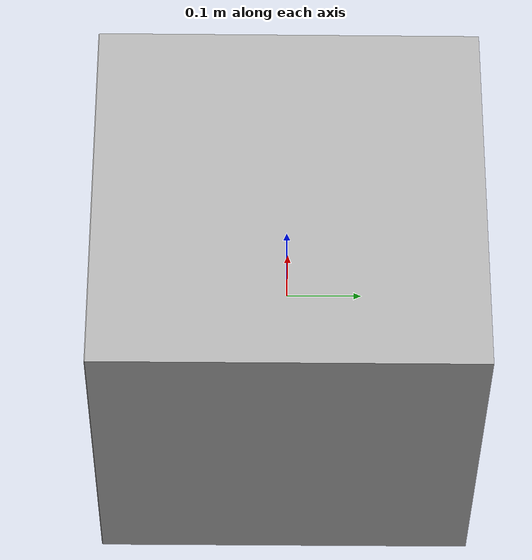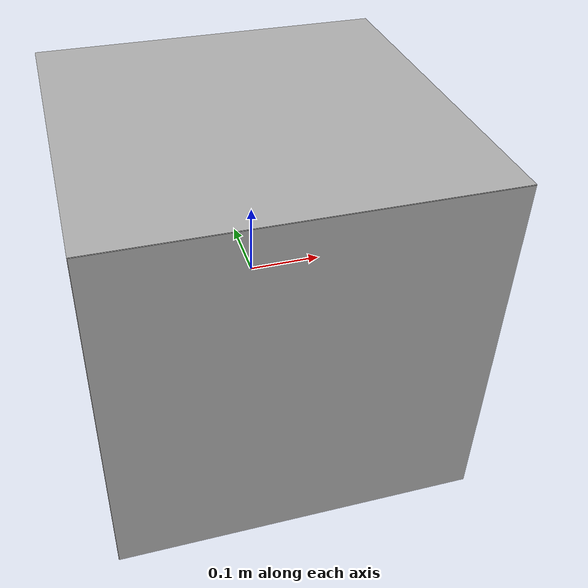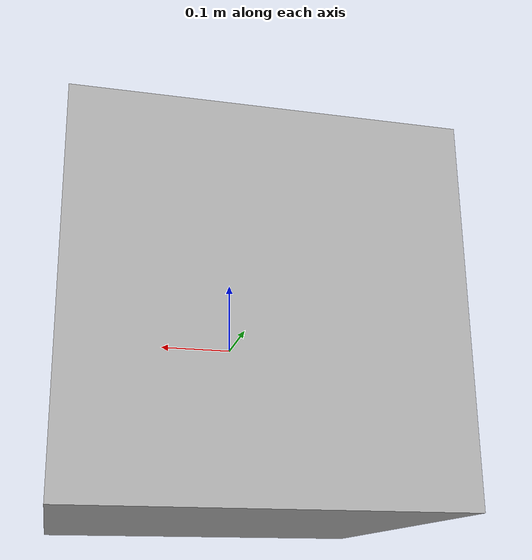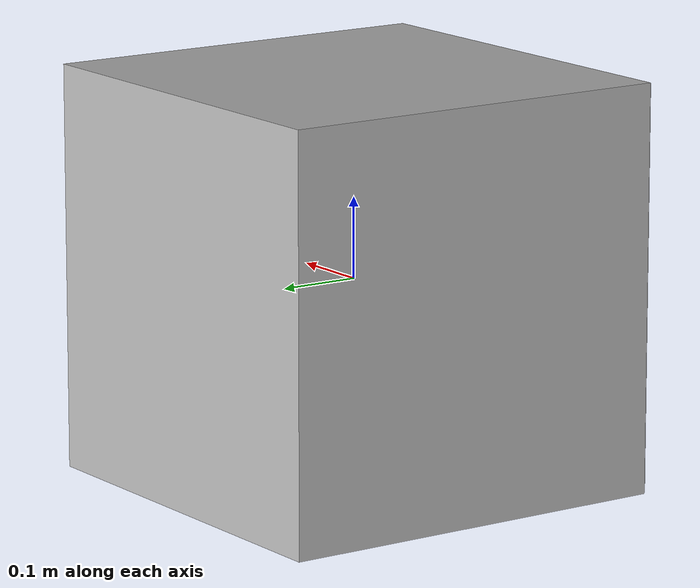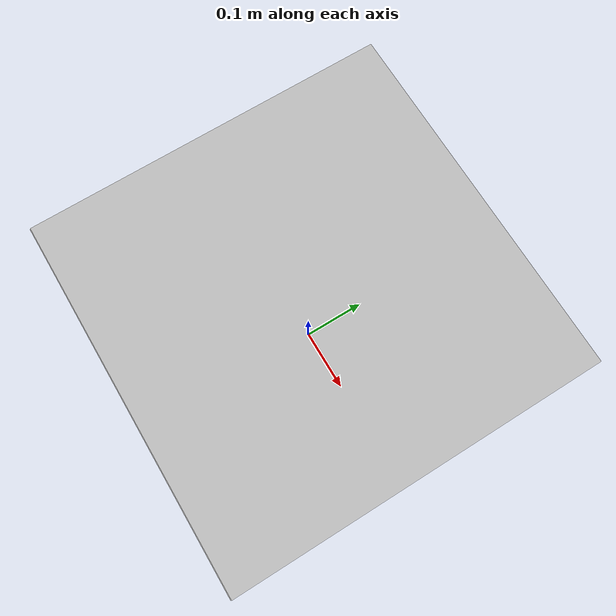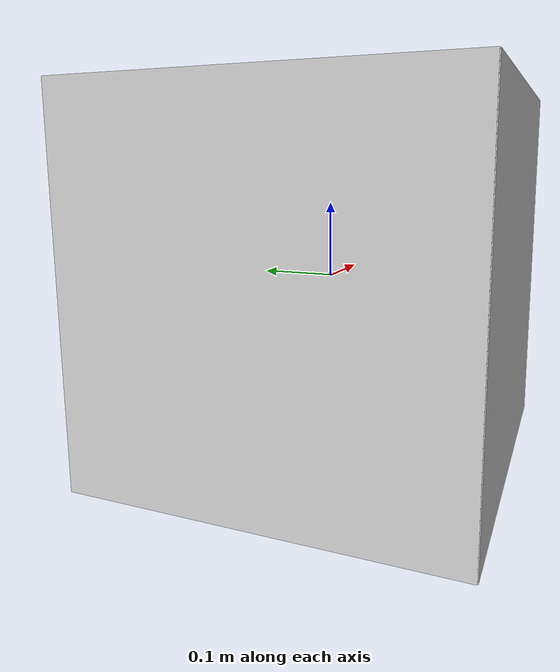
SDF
<?xml version="1.0"?>
<sdf version="1.5">
  <model name="aruco_visual_marker_26">
    <pose>0 0 0 0 0 0</pose>
    <static>false</static>

    <link name="aruco_link_base">

      <visual name="visual">
        <geometry>
          <box>
            <size>0.5 0.5 0.5</size>
          </box>
        </geometry>
      </visual>

      <collision name="collision">
        <geometry>
          <box>
            <size>0.5 0.5 0.5</size>
          </box>
        </geometry>
      </collision>

    </link>

    <link name="marker_box">
      <pose>0 -0.151 0 0 0 0</pose>
      <visual name="visual">
        <geometry>
          <box>
            <size>0.499 0.2 0.499</size>
          </box>
        </geometry>
        <material>
          <script>
            <uri>model://aruco_visual_marker_26/materials/scripts</uri>
            <uri>model://aruco_visual_marker_26/materials/textures</uri>
            <name>ArucoVisualMarker26/Marker</name>
          </script>
          <emissive>1 1 1 1</emissive>
        </material>
      </visual>

      <collision name="collision">
        <geometry>
          <box>
            <size>0.499 0.2 0.499</size>
          </box>
        </geometry>
      </collision>

    </link>

    <joint name="merker_joint" type="fixed">
      <child>marker_box</child>
      <parent>aruco_link_base</parent>
    </joint>

    <plugin name="aruco_move" filename="libgazebo_ros_planar_move.so">
      <commandTopic>aruco_cmd_vel</commandTopic>
      <odometryTopic>odom</odometryTopic>
      <odometryFrame>odom</odometryFrame>                         <!-- header frame id -->
      <robotBaseFrame>aruco_link_base</robotBaseFrame>            <!-- child  frame id -->
    </plugin>

  </model>
</sdf>

      <inertial>
        <mass>500</mass>
        <inertia> <!-- inertias are tricky to compute -->
          <!-- http://gazebosim.org/tutorials?tut=inertia&cat=build_robot -->
          <ixx>20.75</ixx>       <!-- for a box: ixx = 0.083 * mass * (y*y + z*z) -->
          <ixy>0</ixy>         <!-- for a box: ixy = 0 -->
          <ixz>0</ixz>         <!-- for a box: ixz = 0 -->
          <iyy>20.75</iyy>       <!-- for a box: iyy = 0.083 * mass * (x*x + z*z) -->
          <iyz>0</iyz>         <!-- for a box: iyz = 0 -->
          <izz>20.75</izz>       <!-- for a box: izz = 0.083 * mass * (x*x + y*y) -->
        </inertia>
      </inertial>
